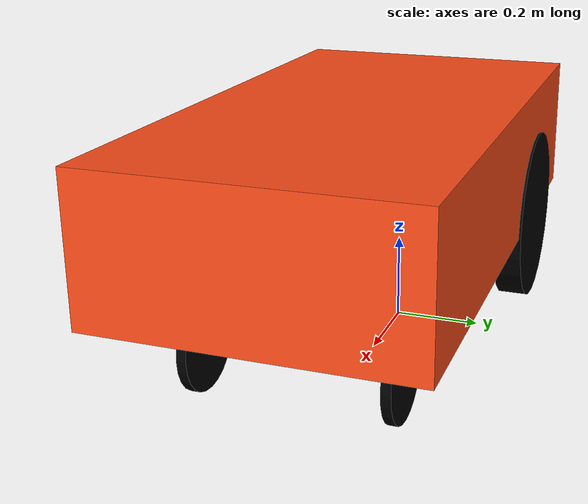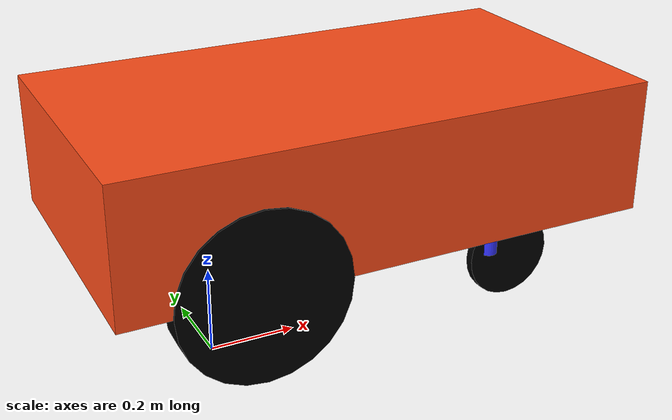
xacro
<?xml version="1.0"?>
<robot xmlns:xacro="http://www.ros.org/wiki/xacro" name="robot">

    <material name="white">
        <color rgba="1 1 1 1" />
    </material>

    <material name="orange">
        <color rgba="1 0.3 0.1 1" />
    </material>

    <material name="blue">
        <color rgba="0.2 0.2 1 1" />
    </material>

    <material name="black">
        <color rgba="0 0 0 1" />
    </material>

    <!-- BASE LINK -->

    <link name="base_link">
    </link>

    <!-- BASE_FOOTPRINT LINK -->

    <joint name="base_footprint_joint" type="fixed">
        <parent link="base_link"/>
        <child link="base_footprint"/>
        <origin xyz="0 0 0" rpy="0 0 0"/>
    </joint>

    <link name="base_footprint">
    </link>

    <!-- CHASSIS LINK -->

    <joint name="chassis_joint" type="fixed">
        <parent link="base_link"/>
        <child link="chassis"/>
        <origin xyz="-0.3 0 0.3"/>
    </joint>

    <link name="chassis">
        <inertial>
            <origin xyz="0.6 0 0.15"/>
            <mass value="80.0"/>
            <inertia ixx="5.0" iyy="5.0" izz="2.5" ixy="0.0" ixz="0.0" iyz="0.0"/>
        </inertial>
        <visual>
            <origin xyz="0.6 0 0.15"/>
            <geometry>
                <box size="1.2 0.65 0.3"/>
            </geometry>
            <material name="orange"/>
        </visual>
        <collision>
            <origin xyz="0.6 0 0.15"/>
            <geometry>
                <box size="1.2 0.65 0.3"/>
            </geometry>
        </collision>
    </link>

    <!-- LEFT WHEEL LINK -->

    <joint name="left_wheel_joint" type="continuous">
        <parent link="base_link"/>
        <child link="left_wheel"/>
        <origin xyz="0 0.3 0.3" rpy="-${pi/2} 0 0"/>
        <axis xyz="0 0 1"/>
        <dynamics damping="0.1" friction="0.1"/>  <!-- Add friction and damping -->
    </joint>

    <link name="left_wheel">
        <inertial>
            <origin xyz="0 0 0"/>
            <mass value="2.0"/>
            <inertia ixx="0.02" iyy="0.02" izz="0.01" ixy="0.0" ixz="0.0" iyz="0.0"/>
        </inertial>
        <visual>
            <geometry>
                <cylinder radius="0.19" length="0.06"/>
            </geometry>
            <material name="black"/>
        </visual>
        <collision>
            <geometry>
                <cylinder radius="0.19" length="0.06"/>
            </geometry>
        </collision>
    </link>

    <!-- RIGHT WHEEL LINK -->

    <joint name="right_wheel_joint" type="continuous">
        <parent link="base_link"/>
        <child link="right_wheel"/>
        <origin xyz="0 -0.3 0.3" rpy="${pi/2} 0 0"/>
        <axis xyz="0 0 -1"/>
        <dynamics damping="0.1" friction="0.1"/>  <!-- Add friction and damping -->
    </joint>

    <link name="right_wheel">
        <inertial>
            <origin xyz="0 0 0"/>
            <mass value="2.0"/>
            <inertia ixx="0.02" iyy="0.02" izz="0.01" ixy="0.0" ixz="0.0" iyz="0.0"/>
        </inertial>
        <visual>
            <geometry>
                <cylinder radius="0.19" length="0.06"/>
            </geometry>
            <material name="black"/>
        </visual>
        <collision>
            <geometry>
                <cylinder radius="0.19" length="0.06"/>
            </geometry>
        </collision>
    </link>

    <!-- LEFT CASTER WHEEL -->

    <joint name="left_caster_joint" type="continuous">
        <parent link="base_link"/>
        <child link="left_caster_mount"/>
        <origin xyz="0.6 0.2 0.25" rpy="0 0 0"/>
        <axis xyz="0 0 1"/>
        <dynamics damping="0.1" friction="0.1"/>  <!-- Add friction and damping -->
    </joint>

    <link name="left_caster_mount">
        <inertial>
            <origin xyz="0 0 0"/>
            <mass value="1.0"/>
            <inertia ixx="0.005" iyy="0.005" izz="0.003" ixy="0.0" ixz="0.0" iyz="0.0"/>
        </inertial>
        <visual>
            <geometry>
                <cylinder radius="0.02" length="0.1"/>
            </geometry>
            <material name="blue"/>
        </visual>
        <collision>
            <geometry>
                <cylinder radius="0.02" length="0.1"/>
            </geometry>
        </collision>
    </link>

    <joint name="left_caster_wheel_joint" type="continuous">
        <parent link="left_caster_mount"/>
        <child link="left_caster_wheel"/>
        <origin xyz="0.05 0 -0.06" rpy="${pi/2} 0 0"/>
        <axis xyz="0 0 1"/>
        <dynamics damping="0.1" friction="0.1"/>  <!-- Add friction and damping -->
    </joint>

    <link name="left_caster_wheel">
        <inertial>
            <origin xyz="0 0 0"/>
            <mass value="0.5"/>
            <inertia ixx="0.001" iyy="0.001" izz="0.0005" ixy="0.0" ixz="0.0" iyz="0.0"/>
        </inertial>
        <visual>
            <geometry>
                <cylinder radius="0.1" length="0.02"/>
            </geometry>
            <material name="black"/>
        </visual>
        <collision>
            <geometry>
                <cylinder radius="0.1" length="0.02"/>
            </geometry>
        </collision>
    </link>

    <!-- RIGHT CASTER WHEEL -->

    <joint name="right_caster_joint" type="continuous">
        <parent link="base_link"/>
        <child link="right_caster_mount"/>
        <origin xyz="0.6 -0.2 0.25" rpy="0 0 0"/>
        <axis xyz="0 0 1"/>
        <dynamics damping="0.1" friction="0.1"/>  <!-- Add friction and damping -->
    </joint>

    <link name="right_caster_mount">
        <inertial>
            <origin xyz="0 0 0"/>
            <mass value="1.0"/>
            <inertia ixx="0.005" iyy="0.005" izz="0.003" ixy="0.0" ixz="0.0" iyz="0.0"/>
        </inertial>
        <visual>
            <geometry>
                <cylinder radius="0.02" length="0.1"/>
            </geometry>
            <material name="blue"/>
        </visual>
        <collision>
            <geometry>
                <cylinder radius="0.02" length="0.1"/>
            </geometry>
        </collision>
    </link>

    <joint name="right_caster_wheel_joint" type="continuous">
        <parent link="right_caster_mount"/>
        <child link="right_caster_wheel"/>
        <origin xyz="0.05 0 -0.06" rpy="${pi/2} 0 0"/>
        <axis xyz="0 0 1"/>
        <dynamics damping="0.1" friction="0.1"/>  <!-- Add friction and damping -->
    </joint>

    <link name="right_caster_wheel">
        <inertial>
            <origin xyz="0 0 0"/>
            <mass value="0.5"/>
            <inertia ixx="0.001" iyy="0.001" izz="0.0005" ixy="0.0" ixz="0.0" iyz="0.0"/>
        </inertial>
        <visual>
            <geometry>
                <cylinder radius="0.1" length="0.02"/>
            </geometry>
            <material name="black"/>
        </visual>
        <collision>
            <geometry>
                <cylinder radius="0.1" length="0.02"/>
            </geometry>
        </collision>
    </link>

</robot>
